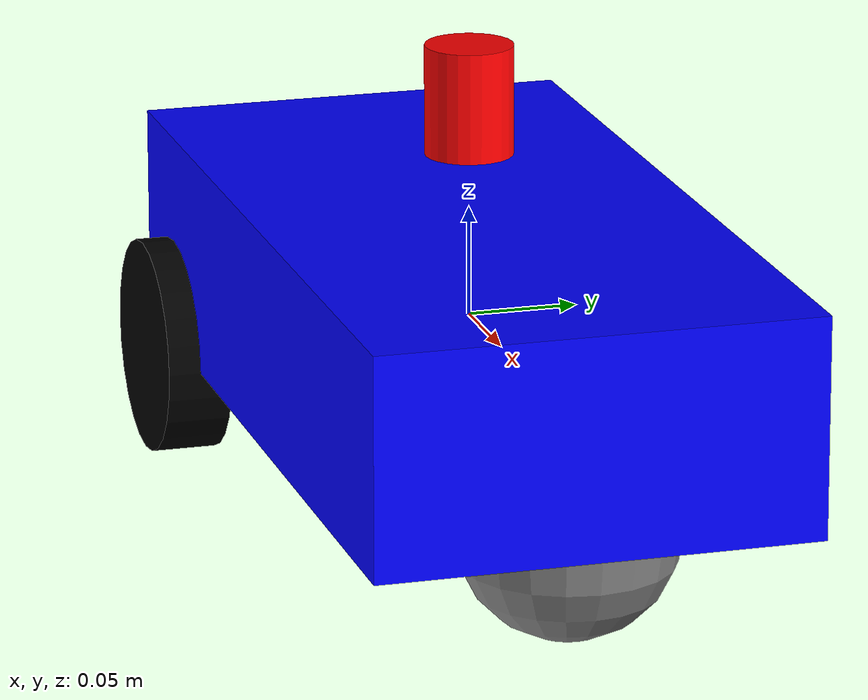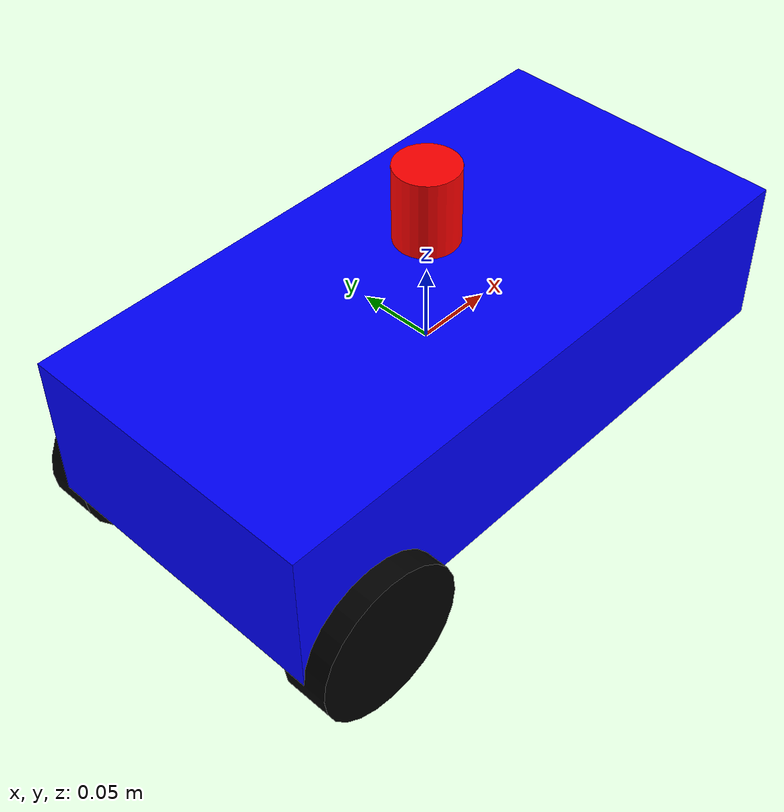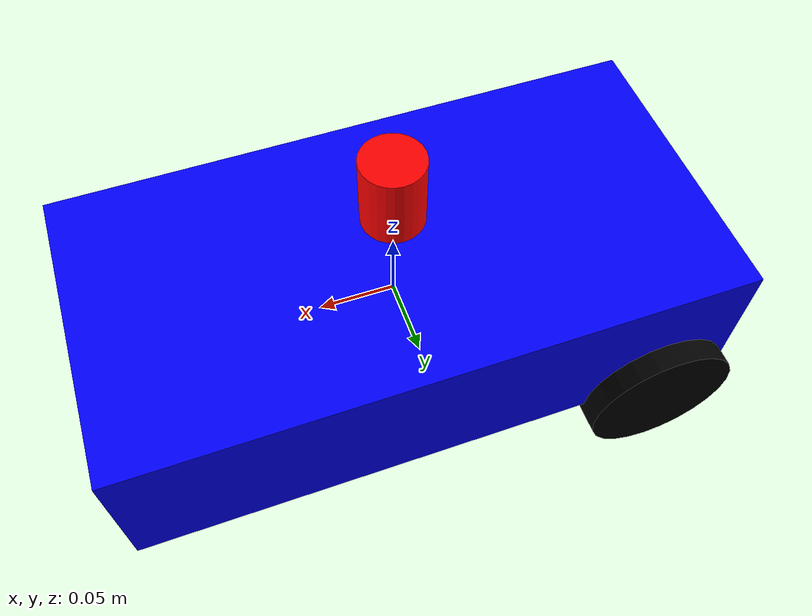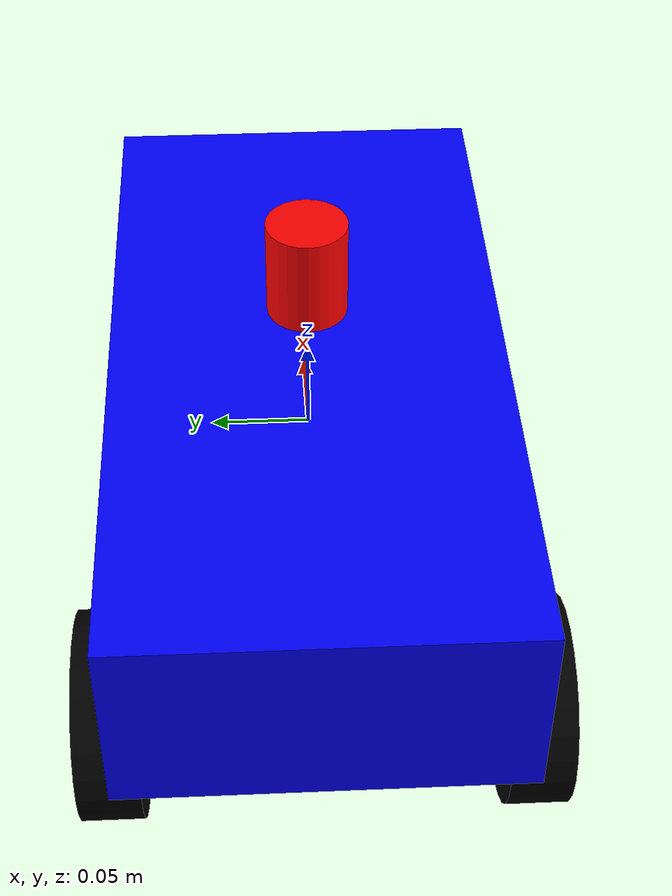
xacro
<?xml version="1.0"?>
<robot name="simple_robot" xmlns:xacro="http://wiki.ros.org/xacro">

  <!-- ===================== 1. 提取所有参数 ===================== -->
  <xacro:property name="base_length" value="0.4"/>
  <xacro:property name="base_width" value="0.2"/>
  <xacro:property name="base_height" value="0.1"/>

  <xacro:property name="wheel_radius" value="0.05"/>
  <xacro:property name="wheel_length" value="0.03"/>

  <xacro:property name="caster_radius" value="0.05"/>

  <xacro:property name="laser_radius" value="0.02"/>
  <xacro:property name="laser_length" value="0.05"/>

  <!-- ===================== 2. 轮子宏 ===================== -->
  <xacro:macro name="wheel_macro" params="name parent x y z">
    <link name="${name}_link">
      <visual>
        <origin xyz="0 0 0" rpy="1.5708 0 0"/>
        <geometry>
          <cylinder radius="${wheel_radius}" length="${wheel_length}"/>
        </geometry>
        <material name="black">
          <color rgba="0 0 0 1"/>
        </material>
      </visual>
      <collision>
        <origin xyz="0 0 0" rpy="1.5708 0 0"/>
        <geometry>
          <cylinder radius="${wheel_radius}" length="${wheel_length}"/>
        </geometry>
      </collision>
    </link>

    <joint name="${name}_joint" type="revolute">
      <origin xyz="${x} ${y} ${z}"/>
      <parent link="${parent}"/>
      <child link="${name}_link"/>
      <axis xyz="0 1 0"/>
      <limit effort="10" velocity="10" lower="-1e6" upper="1e6"/>
    </joint>
  </xacro:macro>

  <!-- ===================== 3. 激光雷达宏 ===================== -->
  <xacro:macro name="laser_macro" params="name parent x y z">
    <link name="${name}_link">
      <visual>
        <geometry>
          <cylinder radius="${laser_radius}" length="${laser_length}"/>
        </geometry>
        <material name="red">
          <color rgba="1 0 0 1"/>
        </material>
      </visual>
      <collision>
        <geometry>
          <cylinder radius="${laser_radius}" length="${laser_length}"/>
        </geometry>
      </collision>
    </link>

    <joint name="${name}_joint" type="fixed">
      <origin xyz="${x} ${y} ${z}"/>
      <parent link="${parent}"/>
      <child link="${name}_link"/>
    </joint>
  </xacro:macro>

  <!-- ===================== 4. 底盘 ===================== -->
  <link name="base_link">
    <visual>
      <geometry>
        <box size="${base_length} ${base_width} ${base_height}"/>
      </geometry>
      <material name="blue">
        <color rgba="0 0 1 1"/>
      </material>
    </visual>
    <collision>
      <geometry>
        <box size="${base_length} ${base_width} ${base_height}"/>
      </geometry>
    </collision>
  </link>

  <!-- ===================== 5. 左右轮（调用宏） ===================== -->
  <xacro:wheel_macro name="wheel_left" parent="base_link" x="-0.15" y="-0.1" z="-0.05"/>
  <xacro:wheel_macro name="wheel_right" parent="base_link" x="-0.15" y="0.1" z="-0.05"/>

  <!-- ===================== 6. 万向轮 ===================== -->
  <link name="caster_link">
    <visual>
      <geometry>
        <sphere radius="${caster_radius}"/>
      </geometry>
      <material name="gray">
        <color rgba="0.5 0.5 0.5 1"/>
      </material>
    </visual>
    <collision>
      <geometry>
        <sphere radius="${caster_radius}"/>
      </geometry>
    </collision>
  </link>

  <joint name="caster_joint" type="fixed">
    <origin xyz="0.15 0 -0.05"/>
    <parent link="base_link"/>
    <child link="caster_link"/>
  </joint>

  <!-- ===================== 7. 激光雷达（调用宏 → fixed 固定） ===================== -->
  <xacro:laser_macro name="laser" parent="base_link" x="0" y="0" z="0.1"/>

</robot>
